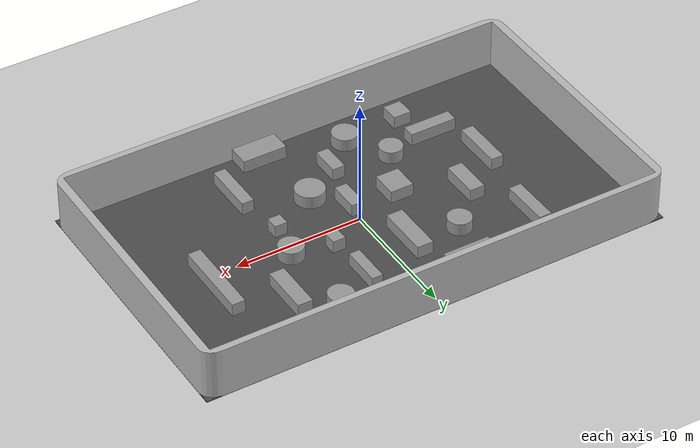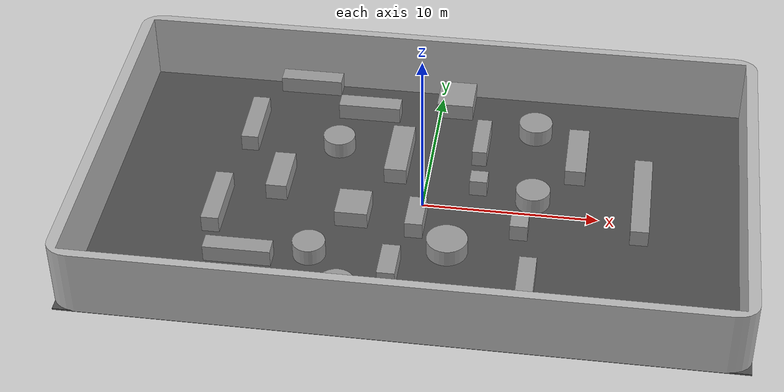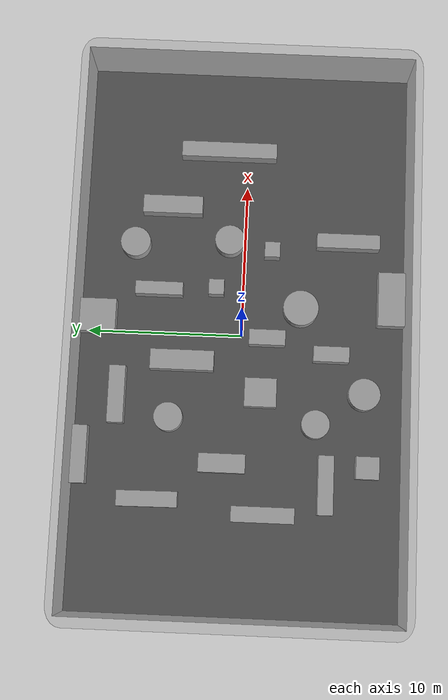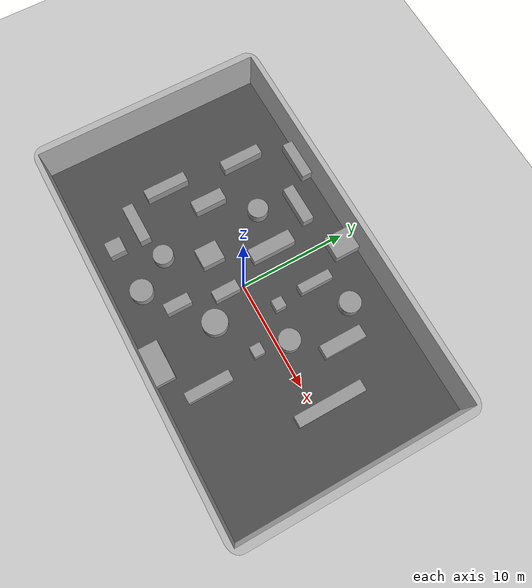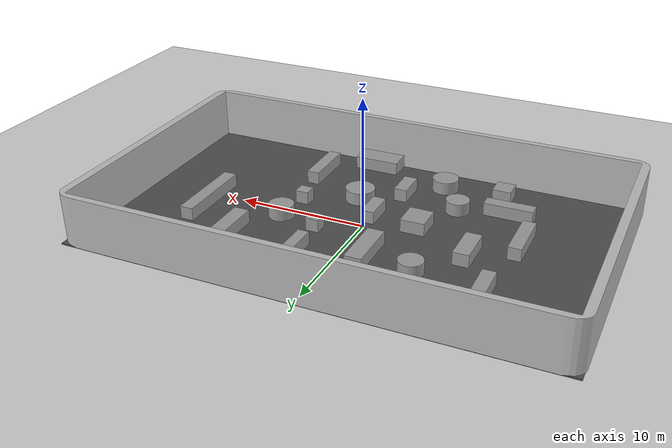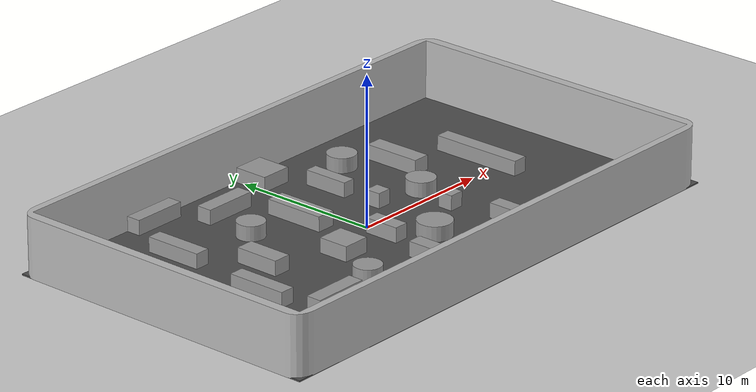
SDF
<sdf version="1.6">
 <world name="default">
  <light name="sun" type="directional">
   <cast_shadows>0</cast_shadows>
   <pose>0 0 100 0 -0 0</pose>
   <diffuse>0.8 0.8 0.8 1</diffuse>
   <specular>0.1 0.1 0.1 1</specular>
   <attenuation>
    <range>1000</range>
    <constant>0.9</constant>
    <linear>0.01</linear>
    <quadratic>0.001</quadratic>
   </attenuation>
   <direction>0 0 -1</direction>
  </light>
  <model name="ground_plane">
   <static>1</static>
   <link name="link">
    <collision name="collision">
     <geometry><plane><normal>0 0 1</normal><size>100 100</size></plane></geometry>
     <surface><friction><ode><mu>100</mu><mu2>50</mu2></ode></friction></surface>
    </collision>
    <visual name="visual">
     <cast_shadows>0</cast_shadows>
     <geometry><plane><normal>0 0 1</normal><size>100 100</size></plane></geometry>
     <material>
      <script><uri>file://media/materials/scripts/gazebo.material</uri><name>Gazebo/Grey</name></script>
     </material>
    </visual>
   </link>
  </model>
  <gravity>0 0 -9.8</gravity>
  <magnetic_field>6e-06 2.3e-05 -4.2e-05</magnetic_field>
  <atmosphere type="adiabatic"/>
  <physics name="default_physics" default="0" type="ode">
   <max_step_size>0.001</max_step_size>
   <real_time_factor>1</real_time_factor>
   <real_time_update_rate>1000</real_time_update_rate>
  </physics>
  <scene><ambient>0.4 0.4 0.4 1</ambient><background>0.7 0.7 0.7 1</background><shadows>1</shadows></scene>
  <spherical_coordinates>
   <surface_model>EARTH_WGS84</surface_model>
   <latitude_deg>0</latitude_deg>
   <longitude_deg>0</longitude_deg>
   <elevation>0</elevation>
   <heading_deg>0</heading_deg>
  </spherical_coordinates>
  <model name="asphalt_plane">
   <static>1</static>
   <link name="link">
    <collision name="collision"><geometry><box><size>37 22 0.1</size></box></geometry></collision>
    <visual name="visual">
     <cast_shadows>0</cast_shadows>
     <geometry><box><size>37 22 0.1</size></box></geometry>
     <material>
      <script>
       <uri>model://asphalt_plane/materials/scripts</uri>
       <uri>model://asphalt_plane/materials/textures</uri>
       <name>vrc/asphalt</name>
      </script>
     </material>
    </visual>
   </link>
   <pose>0.035097 0.000125 0 0 -0 0</pose>
  </model>
  <model name="yard_square">
   <pose>0 0 0 1.5708 -0 1.5708</pose>
   <static>1</static>
   <link name="body">
    <collision name="collision">
     <geometry><mesh><uri>model://yard_square/yard_square.stl</uri><scale>0.1 0.1 0.13</scale></mesh></geometry>
    </collision>
    <visual name="visual">
     <geometry><mesh><uri>model://yard_square/yard_square.stl</uri><scale>0.1 0.1 0.13</scale></mesh></geometry>
    </visual>
   </link>
  </model>
  <audio><device>default</device></audio>
  <model name="unit_box_0">
   <pose>6.42828 -6.74643 0.550002 -8e-06 -0 4.5e-05</pose>
   <static>1</static>
   <link name="link">
    <inertial>
     <mass>1</mass>
     <inertia>
      <ixx>0.166667</ixx>
      <ixy>0</ixy>
      <ixz>0</ixz>
      <iyy>0.166667</iyy>
      <iyz>0</iyz>
      <izz>0.166667</izz>
     </inertia>
    </inertial>
    <collision name="collision"><geometry><box><size>0.956998 4.10645 1</size></box></geometry></collision>
    <visual name="visual">
     <geometry><box><size>0.956998 4.10645 1</size></box></geometry>
     <material>
      <script><name>Gazebo/Grey</name><uri>file://media/materials/scripts/gazebo.material</uri></script>
     </material>
    </visual>
   </link>
  </model>
  <model name="unit_box_2">
   <pose>-4.17644 7.86651 0.549996 -7e-06 -0 0.001667</pose>
   <static>1</static>
   <link name="link">
    <inertial>
     <mass>1</mass>
     <inertia>
      <ixx>0.166667</ixx>
      <ixy>0</ixy>
      <ixz>0</ixz>
      <iyy>0.166667</iyy>
      <iyz>0</iyz>
      <izz>0.166667</izz>
     </inertia>
    </inertial>
    <collision name="collision"><geometry><box><size>3.6762 1.04493 1</size></box></geometry></collision>
    <visual name="visual">
     <geometry><box><size>3.6762 1.04493 1</size></box></geometry>
     <material>
      <script><name>Gazebo/Grey</name><uri>file://media/materials/scripts/gazebo.material</uri></script>
     </material>
    </visual>
   </link>
  </model>
  <model name="unit_box_3">
   <pose>2.8288 5.47272 0.549227 0 0.000383 -0.000473</pose>
   <static>1</static>
   <link name="link">
    <inertial>
     <mass>1</mass>
     <inertia>
      <ixx>0.166667</ixx>
      <ixy>0</ixy>
      <ixz>0</ixz>
      <iyy>0.166667</iyy>
      <iyz>0</iyz>
      <izz>0.166667</izz>
     </inertia>
    </inertial>
    <collision name="collision"><geometry><box><size>0.851809 3.08638 1</size></box></geometry></collision>
    <visual name="visual">
     <geometry><box><size>0.851809 3.08638 1</size></box></geometry>
     <material>
      <script><name>Gazebo/Grey</name><uri>file://media/materials/scripts/gazebo.material</uri></script>
     </material>
    </visual>
   </link>
  </model>
  <model name="unit_box_4">
   <pose>-10.7422 5.56107 0.544487 0 -0 0.009696</pose>
   <static>1</static>
   <link name="link">
    <inertial>
     <mass>1</mass>
     <inertia>
      <ixx>0.166667</ixx>
      <ixy>0</ixy>
      <ixz>0</ixz>
      <iyy>0.166667</iyy>
      <iyz>0</iyz>
      <izz>0.166667</izz>
     </inertia>
    </inertial>
    <collision name="collision"><geometry><box><size>1 3.85958 1</size></box></geometry></collision>
    <visual name="visual">
     <geometry><box><size>1 3.85958 1</size></box></geometry>
     <material>
      <script><name>Gazebo/Grey</name><uri>file://media/materials/scripts/gazebo.material</uri></script>
     </material>
    </visual>
   </link>
  </model>
  <model name="unit_box_5">
   <pose>-3.72798 -1.36036 0.549982 0 1.7e-05 -1.57091</pose>
   <static>1</static>
   <link name="link">
    <inertial>
     <mass>1</mass>
     <inertia>
      <ixx>0.166667</ixx>
      <ixy>0</ixy>
      <ixz>0</ixz>
      <iyy>0.166667</iyy>
      <iyz>0</iyz>
      <izz>0.166667</izz>
     </inertia>
    </inertial>
    <collision name="collision"><geometry><box><size>2.05698 1.8521 1</size></box></geometry></collision>
    <visual name="visual">
     <geometry><box><size>2.05698 1.8521 1</size></box></geometry>
     <material>
      <script><name>Gazebo/Grey</name><uri>file://media/materials/scripts/gazebo.material</uri></script>
     </material>
    </visual>
   </link>
  </model>
  <model name="unit_cylinder">
   <pose>-5.51064 4.47671 0.549998 -3e-06 -1e-06 0.152909</pose>
   <static>1</static>
   <link name="link">
    <inertial>
     <mass>1</mass>
     <inertia><ixx>0.145833</ixx><ixy>0</ixy><ixz>0</ixz><iyy>0.145833</iyy><iyz>0</iyz><izz>0.125</izz></inertia>
    </inertial>
    <collision name="collision">
     <geometry><cylinder><radius>0.928444</radius><length>1</length></cylinder></geometry>
    </collision>
    <visual name="visual">
     <geometry><cylinder><radius>0.928444</radius><length>1</length></cylinder></geometry>
     <material>
      <script><name>Gazebo/Grey</name><uri>file://media/materials/scripts/gazebo.material</uri></script>
     </material>
    </visual>
   </link>
  </model>
  <model name="unit_cylinder_0">
   <pose>-3.59444 -8.01436 0.549989 2e-06 0 -0.0002</pose>
   <static>1</static>
   <link name="link">
    <inertial>
     <mass>1</mass>
     <inertia><ixx>0.145833</ixx><ixy>0</ixy><ixz>0</ixz><iyy>0.145833</iyy><iyz>0</iyz><izz>0.125</izz></inertia>
    </inertial>
    <collision name="collision">
     <geometry><cylinder><radius>1.02868</radius><length>1</length></cylinder></geometry>
    </collision>
    <visual name="visual">
     <geometry><cylinder><radius>1.02868</radius><length>1</length></cylinder></geometry>
     <material>
      <script><name>Gazebo/Grey</name><uri>file://media/materials/scripts/gazebo.material</uri></script>
     </material>
    </visual>
   </link>
  </model>
  <model name="unit_box_9">
   <pose>-9.44794 -5.70166 0.549892 0 -7.9e-05 0.003843</pose>
   <static>1</static>
   <link name="link">
    <inertial>
     <mass>1</mass>
     <inertia>
      <ixx>0.166667</ixx>
      <ixy>0</ixy>
      <ixz>0</ixz>
      <iyy>0.166667</iyy>
      <iyz>0</iyz>
      <izz>0.166667</izz>
     </inertia>
    </inertial>
    <collision name="collision"><geometry><box><size>3.76286 1 1</size></box></geometry></collision>
    <visual name="visual">
     <geometry><box><size>3.76286 1 1</size></box></geometry>
     <material>
      <script><name>Gazebo/Grey</name><uri>file://media/materials/scripts/gazebo.material</uri></script>
     </material>
    </visual>
   </link>
  </model>
  <model name="unit_box_10">
   <pose>-11.4578 -1.78544 0.547399 -0.000838 0 0</pose>
   <static>1</static>
   <link name="link">
    <inertial>
     <mass>1</mass>
     <inertia>
      <ixx>0.166667</ixx>
      <ixy>0</ixy>
      <ixz>0</ixz>
      <iyy>0.166667</iyy>
      <iyz>0</iyz>
      <izz>0.166667</izz>
     </inertia>
    </inertial>
    <collision name="collision"><geometry><box><size>1 4.02488 1</size></box></geometry></collision>
    <visual name="visual">
     <geometry><box><size>1 4.02488 1</size></box></geometry>
     <material>
      <script><name>Gazebo/Grey</name><uri>file://media/materials/scripts/gazebo.material</uri></script>
     </material>
    </visual>
   </link>
  </model>
  <model name="unit_cylinder_1">
   <pose>1.87139 -3.77744 0.550001 1e-06 -1e-06 0.000638</pose>
   <static>1</static>
   <link name="link">
    <inertial>
     <mass>1</mass>
     <inertia><ixx>0.145833</ixx><ixy>0</ixy><ixz>0</ixz><iyy>0.145833</iyy><iyz>0</iyz><izz>0.125</izz></inertia>
    </inertial>
    <collision name="collision">
     <geometry><cylinder><radius>1.15102</radius><length>1</length></cylinder></geometry>
    </collision>
    <visual name="visual">
     <geometry><cylinder><radius>1.15102</radius><length>1</length></cylinder></geometry>
     <material>
      <script><name>Gazebo/Grey</name><uri>file://media/materials/scripts/gazebo.material</uri></script>
     </material>
    </visual>
   </link>
  </model>
  <model name="unit_cylinder_2">
   <pose>-5.63383 -4.94665 0.550001 -1e-06 1e-06 0.667564</pose>
   <static>1</static>
   <link name="link">
    <inertial>
     <mass>1</mass>
     <inertia><ixx>0.145833</ixx><ixy>0</ixy><ixz>0</ixz><iyy>0.145833</iyy><iyz>0</iyz><izz>0.125</izz></inertia>
    </inertial>
    <collision name="collision">
     <geometry><cylinder><radius>0.91444</radius><length>1</length></cylinder></geometry>
    </collision>
    <visual name="visual">
     <geometry><cylinder><radius>0.91444</radius><length>1</length></cylinder></geometry>
     <material>
      <script><name>Gazebo/Grey</name><uri>file://media/materials/scripts/gazebo.material</uri></script>
     </material>
    </visual>
   </link>
  </model>
  <model name="unit_box_1">
   <pose>2.66982 -9.65613 0.550023 6e-06 -0 0.000254</pose>
   <static>1</static>
   <link name="link">
    <inertial>
     <mass>1</mass>
     <inertia>
      <ixx>0.166667</ixx>
      <ixy>0</ixy>
      <ixz>0</ixz>
      <iyy>0.166667</iyy>
      <iyz>0</iyz>
      <izz>0.166667</izz>
     </inertia>
    </inertial>
    <collision name="collision"><geometry><box><size>3.52782 1.7824 1</size></box></geometry></collision>
    <visual name="visual">
     <geometry><box><size>3.52782 1.7824 1</size></box></geometry>
     <material>
      <script><name>Gazebo/Grey</name><uri>file://media/materials/scripts/gazebo.material</uri></script>
     </material>
    </visual>
   </link>
  </model>
  <model name="unit_box_6">
   <pose>12.3461 1.28611 0.549236 -0.00038 0 7.5e-05</pose>
   <static>1</static>
   <link name="link">
    <inertial>
     <mass>1</mass>
     <inertia>
      <ixx>0.166667</ixx>
      <ixy>0</ixy>
      <ixz>0</ixz>
      <iyy>0.166667</iyy>
      <iyz>0</iyz>
      <izz>0.166667</izz>
     </inertia>
    </inertial>
    <collision name="collision"><geometry><box><size>1.02781 6.2742 1</size></box></geometry></collision>
    <visual name="visual">
     <geometry><box><size>1.02781 6.2742 1</size></box></geometry>
     <material>
      <script><name>Gazebo/Grey</name><uri>file://media/materials/scripts/gazebo.material</uri></script>
     </material>
    </visual>
   </link>
  </model>
  <model name="unit_box_8">
   <pose>-8.32316 0.928551 0.549068 0.00039 -0 0</pose>
   <static>1</static>
   <link name="link">
    <inertial>
     <mass>1</mass>
     <inertia>
      <ixx>0.166667</ixx>
      <ixy>0</ixy>
      <ixz>0</ixz>
      <iyy>0.166667</iyy>
      <iyz>0</iyz>
      <izz>0.166667</izz>
     </inertia>
    </inertial>
    <collision name="collision"><geometry><box><size>1.20721 3 1</size></box></geometry></collision>
    <visual name="visual">
     <geometry><box><size>1.20721 3 1</size></box></geometry>
     <material>
      <script><name>Gazebo/Grey</name><uri>file://media/materials/scripts/gazebo.material</uri></script>
     </material>
    </visual>
   </link>
  </model>
  <model name="unit_box_11">
   <pose>8.46949 4.84326 0.552867 0.00034 -0 0</pose>
   <static>1</static>
   <link name="link">
    <inertial>
     <mass>1</mass>
     <inertia>
      <ixx>0.166667</ixx>
      <ixy>0</ixy>
      <ixz>0</ixz>
      <iyy>0.166667</iyy>
      <iyz>0</iyz>
      <izz>0.166667</izz>
     </inertia>
    </inertial>
    <collision name="collision"><geometry><box><size>1.17874 3.90203 1</size></box></geometry></collision>
    <visual name="visual">
     <geometry><box><size>1.17874 3.90203 1</size></box></geometry>
     <material>
      <script><name>Gazebo/Grey</name><uri>file://media/materials/scripts/gazebo.material</uri></script>
     </material>
    </visual>
   </link>
  </model>
  <model name="unit_box_12">
   <pose>-0.13445 -1.66663 0.547927 -0.000766 0 0</pose>
   <static>1</static>
   <link name="link">
    <inertial>
     <mass>1</mass>
     <inertia>
      <ixx>0.166667</ixx>
      <ixy>0</ixy>
      <ixz>0</ixz>
      <iyy>0.166667</iyy>
      <iyz>0</iyz>
      <izz>0.166667</izz>
     </inertia>
    </inertial>
    <collision name="collision"><geometry><box><size>1 2.34867 1</size></box></geometry></collision>
    <visual name="visual">
     <geometry><box><size>1 2.34867 1</size></box></geometry>
     <material>
      <script><name>Gazebo/Grey</name><uri>file://media/materials/scripts/gazebo.material</uri></script>
     </material>
    </visual>
   </link>
  </model>
  <model name="unit_box_13">
   <pose>-1.81422 3.76831 0.549997 6e-06 -0 0.000172</pose>
   <static>1</static>
   <link name="link">
    <inertial>
     <mass>1</mass>
     <inertia>
      <ixx>0.166667</ixx>
      <ixy>0</ixy>
      <ixz>0</ixz>
      <iyy>0.166667</iyy>
      <iyz>0</iyz>
      <izz>0.166667</izz>
     </inertia>
    </inertial>
    <collision name="collision"><geometry><box><size>1.28695 4.10848 1</size></box></geometry></collision>
    <visual name="visual">
     <geometry><box><size>1.28695 4.10848 1</size></box></geometry>
     <material>
      <script><name>Gazebo/Grey</name><uri>file://media/materials/scripts/gazebo.material</uri></script>
     </material>
    </visual>
   </link>
  </model>
  <model name="unit_cylinder_3">
   <pose>6.21018 1.00164 0.55 0 0 -0.000136</pose>
   <static>1</static>
   <link name="link">
    <inertial>
     <mass>1</mass>
     <inertia><ixx>0.145833</ixx><ixy>0</ixy><ixz>0</ixz><iyy>0.145833</iyy><iyz>0</iyz><izz>0.125</izz></inertia>
    </inertial>
    <collision name="collision">
     <geometry><cylinder><radius>0.977315</radius><length>1</length></cylinder></geometry>
    </collision>
    <visual name="visual">
     <geometry><cylinder><radius>0.977315</radius><length>1</length></cylinder></geometry>
     <material>
      <script><name>Gazebo/Grey</name><uri>file://media/materials/scripts/gazebo.material</uri></script>
     </material>
    </visual>
   </link>
  </model>
  <model name="unit_box_2_clone">
   <pose>-8.09503 10.0713 0.549998 -7e-06 -0 0.001667</pose>
   <static>1</static>
   <link name="link">
    <inertial>
     <mass>1</mass>
     <inertia>
      <ixx>0.166667</ixx>
      <ixy>0</ixy>
      <ixz>0</ixz>
      <iyy>0.166667</iyy>
      <iyz>0</iyz>
      <izz>0.166667</izz>
     </inertia>
    </inertial>
    <collision name="collision"><geometry><box><size>3.6762 1.04493 1</size></box></geometry></collision>
    <visual name="visual">
     <geometry><box><size>3.6762 1.04493 1</size></box></geometry>
     <material>
      <script><name>Gazebo/Grey</name><uri>file://media/materials/scripts/gazebo.material</uri></script>
     </material>
    </visual>
   </link>
  </model>
  <model name="unit_box_14">
   <pose>3.04994 1.75676 0.55 0 -0 0</pose>
   <static>1</static>
   <link name="link">
    <inertial>
     <mass>1</mass>
     <inertia>
      <ixx>0.166667</ixx>
      <ixy>0</ixy>
      <ixz>0</ixz>
      <iyy>0.166667</iyy>
      <iyz>0</iyz>
      <izz>0.166667</izz>
     </inertia>
    </inertial>
    <collision name="collision"><geometry><box><size>1 1 1</size></box></geometry></collision>
    <visual name="visual">
     <geometry><box><size>1 1 1</size></box></geometry>
     <material>
      <script><name>Gazebo/Grey</name><uri>file://media/materials/scripts/gazebo.material</uri></script>
     </material>
    </visual>
   </link>
  </model>
  <model name="unit_box_16">
   <pose>-1.07442 -5.83367 0.549961 3.4e-05 -0 0</pose>
   <static>1</static>
   <link name="link">
    <inertial>
     <mass>1</mass>
     <inertia>
      <ixx>0.166667</ixx>
      <ixy>0</ixy>
      <ixz>0</ixz>
      <iyy>0.166667</iyy>
      <iyz>0</iyz>
      <izz>0.166667</izz>
     </inertia>
    </inertial>
    <collision name="collision"><geometry><box><size>1 2.31479 1</size></box></geometry></collision>
    <visual name="visual">
     <geometry><box><size>1 2.31479 1</size></box></geometry>
     <material>
      <script><name>Gazebo/Grey</name><uri>file://media/materials/scripts/gazebo.material</uri></script>
     </material>
    </visual>
   </link>
  </model>
  <model name="unit_cylinder_6">
   <pose>5.85803 7.16453 0.54999 4e-06 2e-06 -0.000215</pose>
   <static>1</static>
   <link name="link">
    <inertial>
     <mass>1</mass>
     <inertia><ixx>0.145833</ixx><ixy>0</ixy><ixz>0</ixz><iyy>0.145833</iyy><iyz>0</iyz><izz>0.125</izz></inertia>
    </inertial>
    <collision name="collision">
     <geometry><cylinder><radius>0.980785</radius><length>1</length></cylinder></geometry>
    </collision>
    <visual name="visual">
     <geometry><cylinder><radius>0.980785</radius><length>1</length></cylinder></geometry>
     <material>
      <script><name>Gazebo/Grey</name><uri>file://media/materials/scripts/gazebo.material</uri></script>
     </material>
    </visual>
   </link>
  </model>
  <model name="unit_box_17">
   <pose>-8.25874 -8.32471 0.549948 4.3e-05 0 -1e-06</pose>
   <static>1</static>
   <link name="link">
    <inertial>
     <mass>1</mass>
     <inertia>
      <ixx>0.166667</ixx>
      <ixy>0</ixy>
      <ixz>0</ixz>
      <iyy>0.166667</iyy>
      <iyz>0</iyz>
      <izz>0.166667</izz>
     </inertia>
    </inertial>
    <collision name="collision"><geometry><box><size>1.43396 1.49188 1</size></box></geometry></collision>
    <visual name="visual">
     <geometry><box><size>1.43396 1.49188 1</size></box></geometry>
     <material>
      <script><name>Gazebo/Grey</name><uri>file://media/materials/scripts/gazebo.material</uri></script>
     </material>
    </visual>
   </link>
  </model>
  <model name="unit_box_18">
   <pose>0.897472 9.58016 0.54988 -8.6e-05 -0 -0.000127</pose>
   <static>1</static>
   <link name="link">
    <inertial>
     <mass>1</mass>
     <inertia>
      <ixx>0.166667</ixx>
      <ixy>0</ixy>
      <ixz>0</ixz>
      <iyy>0.166667</iyy>
      <iyz>0</iyz>
      <izz>0.166667</izz>
     </inertia>
    </inertial>
    <collision name="collision"><geometry><box><size>2.15095 2.7961 1</size></box></geometry></collision>
    <visual name="visual">
     <geometry><box><size>2.15095 2.7961 1</size></box></geometry>
     <material>
      <script><name>Gazebo/Grey</name><uri>file://media/materials/scripts/gazebo.material</uri></script>
     </material>
    </visual>
   </link>
  </model>
  <model name="unit_box_19">
   <pose>5.68701 -1.79469 0.55 0 -0 0</pose>
   <static>1</static>
   <link name="link">
    <inertial>
     <mass>1</mass>
     <inertia>
      <ixx>0.166667</ixx>
      <ixy>0</ixy>
      <ixz>0</ixz>
      <iyy>0.166667</iyy>
      <iyz>0</iyz>
      <izz>0.166667</izz>
     </inertia>
    </inertial>
    <collision name="collision"><geometry><box><size>1 1 1</size></box></geometry></collision>
    <visual name="visual">
     <geometry><box><size>1 1 1</size></box></geometry>
     <material>
      <script><name>Gazebo/Grey</name><uri>file://media/materials/scripts/gazebo.material</uri></script>
     </material>
    </visual>
   </link>
  </model>
 </world>
</sdf>
